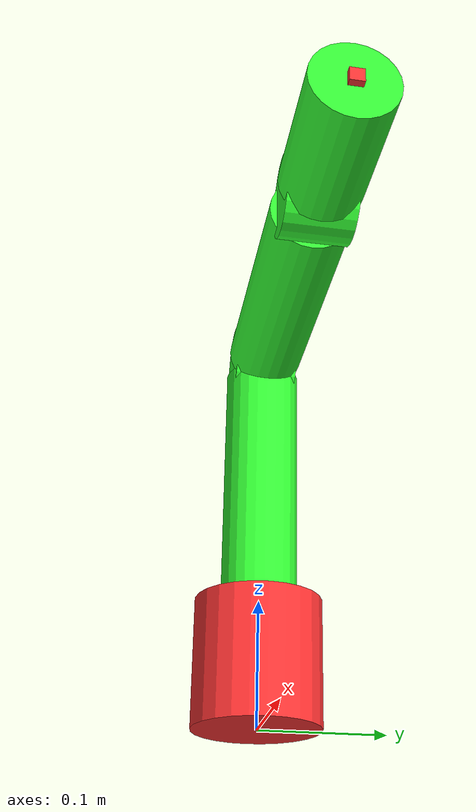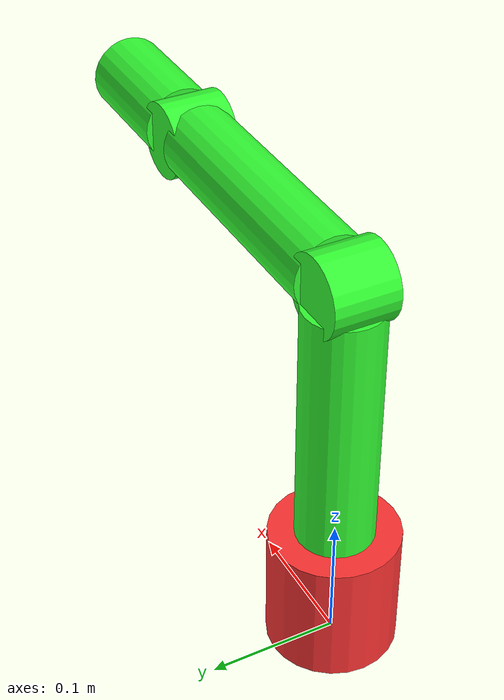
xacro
<?xml version='1.0' encoding='utf-8'?>
<robot xmlns:xacro="http://www.ros.org/wiki/xacro" name="example">
    <!-- path to package -->
    <xacro:property name="package_name" value="motor_control"/>

    <xacro:property name="PI" value="3.141592653589793"/>

    <!-- Add manipulator -->
    <xacro:include filename="$(find ${package_name})/robot/visual/manipulator.xacro"/>

    <!-- Assembly -->
    <link name="world"/>

    <xacro:rigidTransform curr_link="world" next_link="base" xyz="0 0 0.05" rpy="0 0 0"/>
    <link name="base">
        <xacro:base_visual R="0.05" l="0.1" xyz="0 0 0" rpy="0 0 0"/>
    </link>

    <xacro:revoluteJoint id="0" curr_link="base" next_link="link_0" xyz="0 0 ${0.05+0.1}" rpy="0 0 0"/>
    <link name="link_0">
        <xacro:cylinderSolid link_id="0" R="0.03" l="0.2" xyz="0 0 0" rpy="0 0 0"/>
    </link>

    <xacro:revoluteJoint id="1" curr_link="link_0" next_link="link_1" xyz="0 0 ${0.1+0.015}" rpy="${PI/2} 0 0"/>
    <link name="link_1">
        <xacro:cylinderSolid link_id="1" R="0.03" l="0.05" xyz="0 0 0" rpy="0 0 0"/>
    </link>

    <xacro:rigidTransform curr_link="link_1" next_link="link_2" xyz="${0.1+0.015} 0 0" rpy="0 0 0"/>
    <link name="link_2">
        <xacro:cylinderSolid link_id="2" R="0.03" l="0.2" xyz="0 0 0" rpy="0 ${PI/2} 0"/>
    </link>

    <xacro:revoluteJoint id="2" curr_link="link_2" next_link="link_3" xyz="${0.1+0.015} 0 0" rpy="0 0 0"/>
    <link name="link_3">
        <xacro:cylinderSolid link_id="3" R="0.03" l="0.05" xyz="0 0 0" rpy="0 0 0"/>
    </link>

    <xacro:rigidTransform curr_link="link_3" next_link="link_4" xyz="${0.05+0.015} 0 0" rpy="0 0 0"/>
    <link name="link_4">
        <xacro:cylinderSolid link_id="link_4" R="0.03" l="0.1" xyz="0 0 0" rpy="0 ${PI/2} 0"/>
    </link>

    <xacro:rigidTransform curr_link="link_4" next_link="Eff" xyz="${0.05} 0 0" rpy="0 0 0"/>
    <link name="Eff">
        <xacro:brickSolid link_id="Eff" size="0.01 0.01 0.01" xyz="0 0 0" rpy="0 0 0 "/>
    </link>
</robot>

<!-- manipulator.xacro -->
<robot xmlns:xacro="http://www.ros.org/wiki/xacro">

    <xacro:macro name="base_visual" params="xyz rpy R l">
        <visual>
            <origin xyz="${xyz}" rpy="${rpy}"/>
            <geometry>
                <cylinder radius="${R}" length="${l}"/>
            </geometry>
            <material name="based_color">
                <color rgba="1 0.2 0.2 1"/>
            </material>
        </visual>
    </xacro:macro>

    <xacro:macro name="cylinderSolid" params="link_id xyz rpy R l">
        <visual>
            <origin xyz="${xyz}" rpy="${rpy}"/>
            <geometry>
                <cylinder radius="${R}" length="${l}"/>
            </geometry>
            <material name="link_color_${link_id}">
                <color rgba="0.2 1 0.2 1"/>
            </material>
        </visual>
    </xacro:macro>

    <xacro:macro name="brickSolid" params="link_id size xyz rpy">
        <visual>
            <origin xyz="${xyz}" rpy="${rpy}"/>
            <geometry>
                <box size="${size}"/>
            </geometry>
            <material name="link_color_${link_id}">
                <color rgba="1 0.2 0.2 1"/>
            </material>
        </visual>
    </xacro:macro>

    <xacro:macro name="rigidTransform" params="curr_link next_link xyz rpy">
        <joint name="rigidTransform_${curr_link}_to_${next_link}" type="fixed">
            <origin xyz="${xyz}" rpy="${rpy}"/>
            <parent link="${curr_link}"/>
            <child link="${next_link}"/>
        </joint>
    </xacro:macro>

    <xacro:macro name="revoluteJoint" params="id curr_link next_link xyz rpy">
        <joint name="revoluteJoint_${id}" type="revolute">
            <origin xyz="${xyz}" rpy="${rpy}"/>
            <parent link="${curr_link}"/>
            <child link="${next_link}"/>
            <axis xyz="0 0 1"/>
            <limit
                lower="-3.14152"
                upper="3.14152"
                velocity="1000.0"
                effort="1000.0"/>
        </joint>
    </xacro:macro>
</robot>
